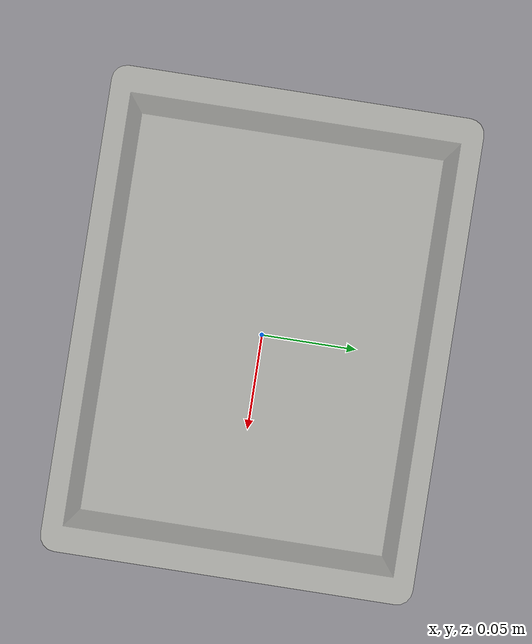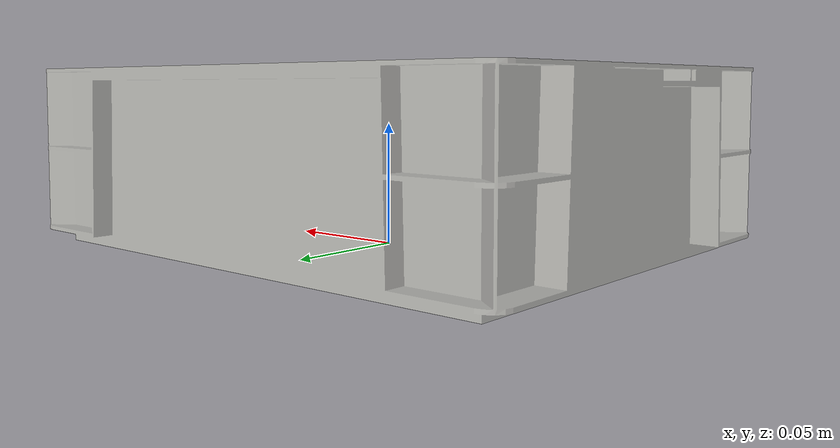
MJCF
<mujoco model="plastic_box">
  <compiler angle="radian" autolimits="true" meshdir="assets"/>

  <asset>
    <mesh name="plastic_box" file="plastic_box.stl" scale="0.0005 0.0005 0.0005"/>
    <material name="plastic_mat" rgba="0.85 0.85 0.80 0.6" specular="0.5" shininess="0.3" reflectance="0.2"/>
  </asset>

  <default>
    <default class="box_wall">
      <geom condim="6" friction="0.8 0.005 0.0001"
            solimp="0.99 0.99 0.001" solref="0.01 1"
            rgba="0 0 0 0"/>
    </default>
  </default>

  <worldbody>
    <body name="plastic_box">
      <freejoint name="box_joint"/>
      <inertial mass="0.2" pos="0 0 0" diaginertia="5.4e-4 8.3e-4 1.0e-3"/>

      <!-- Visual mesh only — no collision -->
      <geom name="plastic_box_visual" mesh="plastic_box" type="mesh"
            material="plastic_mat" euler="1.5708 0 0"
            contype="0" conaffinity="0"/>

      <!-- Floor -->
      <geom name="col_floor" class="box_wall" type="box"
            size="0.097 0.072 0.003" pos="0 0 -0.047"/>
      <!-- Front wall -->
      <geom name="col_front" class="box_wall" type="box"
            size="0.003 0.072 0.047" pos="0.097 0 0"/>
      <!-- Back wall -->
      <geom name="col_back" class="box_wall" type="box"
            size="0.003 0.072 0.047" pos="-0.097 0 0"/>
      <!-- Left wall -->
      <geom name="col_left" class="box_wall" type="box"
            size="0.100 0.003 0.047" pos="0 0.072 0"/>
      <!-- Right wall -->
      <geom name="col_right" class="box_wall" type="box"
            size="0.100 0.003 0.047" pos="0 -0.072 0"/>
    </body>
  </worldbody>
</mujoco>
